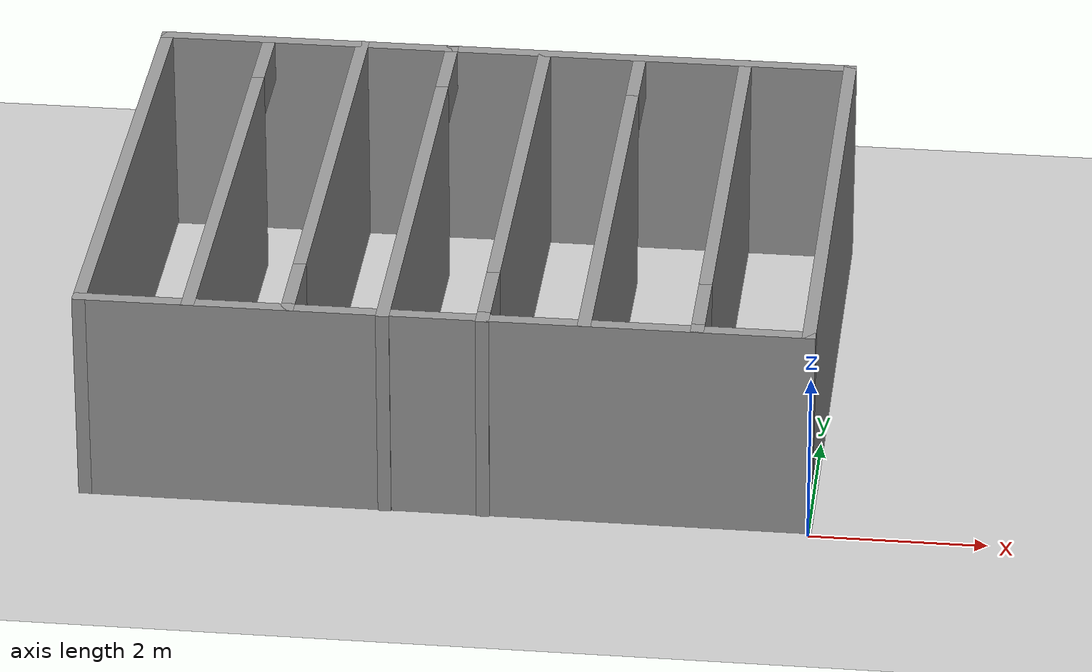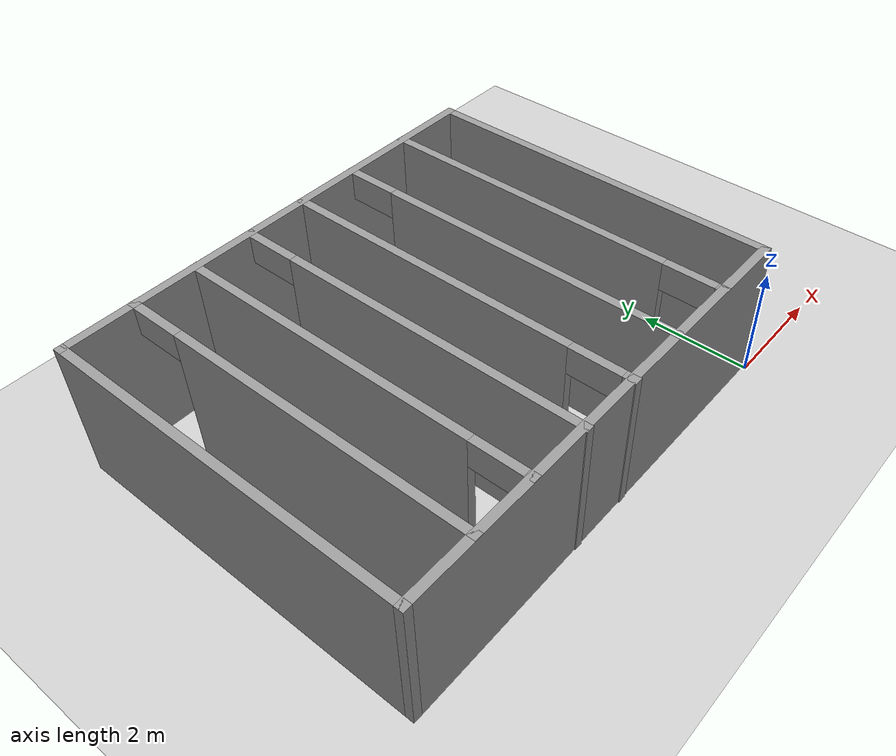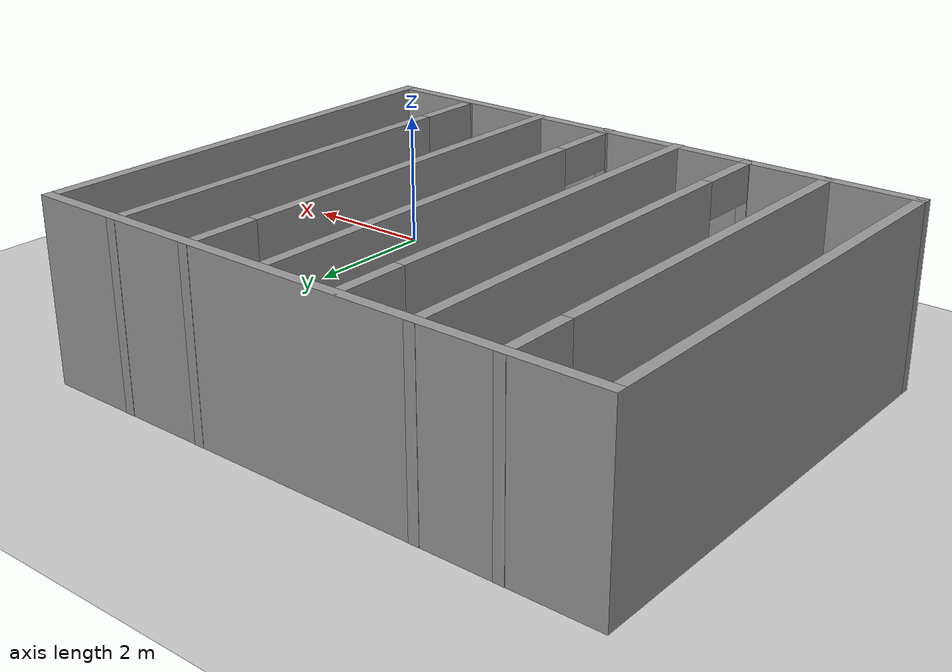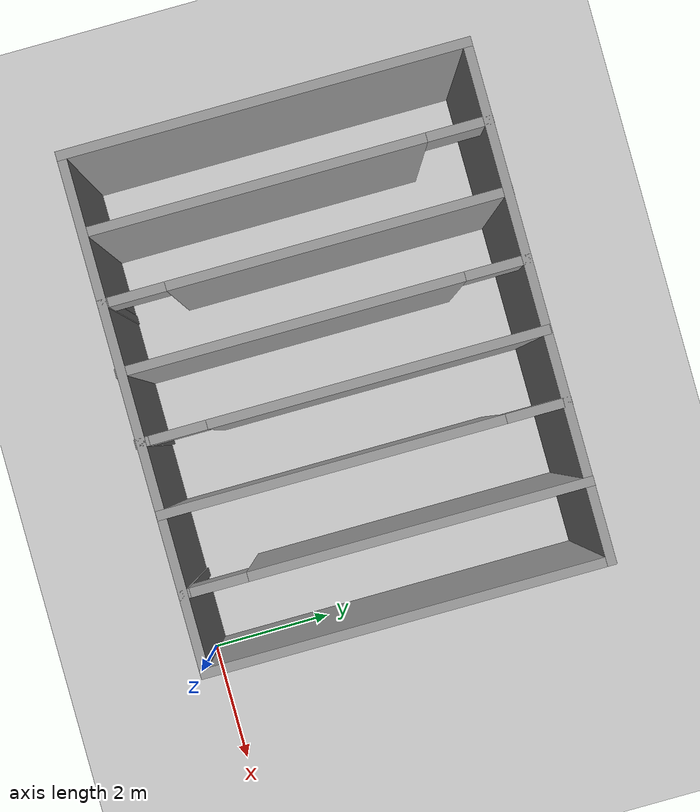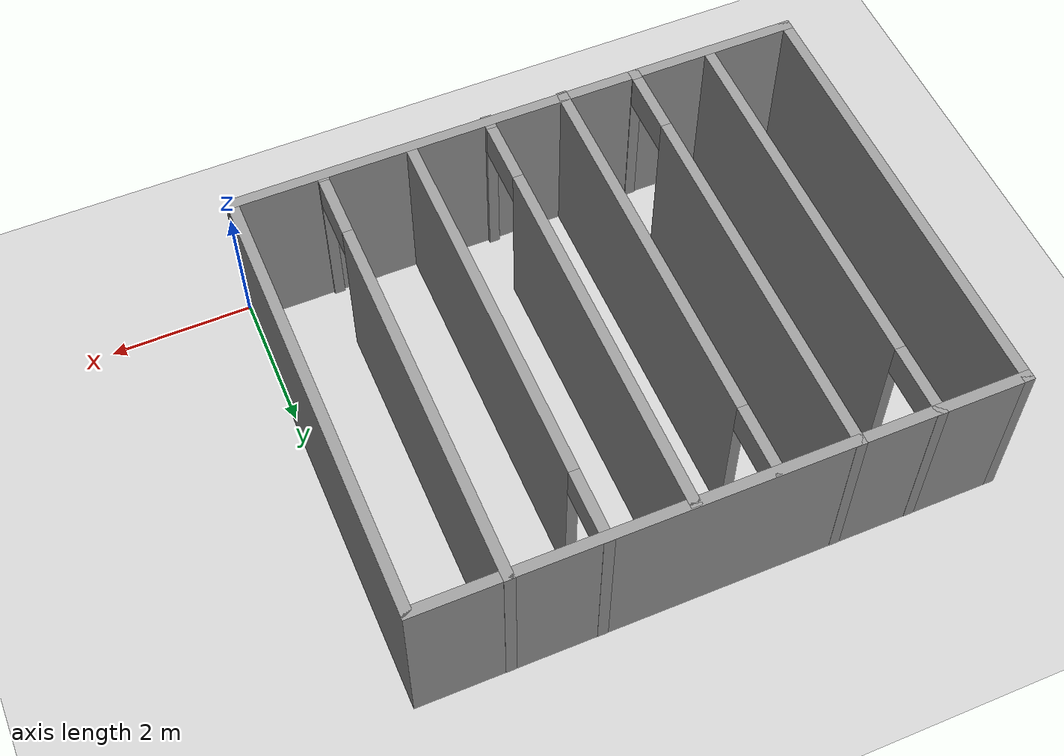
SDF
<sdf version="1.6">
 <world name="default">
  <light name="sun" type="directional">
   <pose>0 0 10 0 -0 0</pose>
   <diffuse>0.8 0.8 0.8 1</diffuse>
   <specular>0.1 0.1 0.1 1</specular>
   <attenuation>
    <range>1000</range>
    <constant>0.9</constant>
    <linear>0.01</linear>
    <quadratic>0.001</quadratic>
   </attenuation>
   <direction>-0.5 0.5 -1</direction>
  </light>
  <model name="ground_plane">
   <static>1</static>
   <link name="link">
    <collision name="collision">
     <geometry><plane><normal>0 0 1</normal><size>100 100</size></plane></geometry>
     <surface><friction><ode><mu>100</mu><mu2>50</mu2></ode></friction></surface>
    </collision>
    <visual name="visual">
     <cast_shadows>0</cast_shadows>
     <geometry><plane><normal>0 0 1</normal><size>100 100</size></plane></geometry>
     <material>
      <script><uri>file://media/materials/scripts/gazebo.material</uri><name>Gazebo/Grey</name></script>
     </material>
    </visual>
   </link>
  </model>
  <gravity>0 0 -9.8</gravity>
  <magnetic_field>6e-06 2.3e-05 -4.2e-05</magnetic_field>
  <atmosphere type="adiabatic"/>
  <physics name="default_physics" default="0" type="ode">
   <max_step_size>0.001</max_step_size>
   <real_time_factor>1</real_time_factor>
   <real_time_update_rate>1000</real_time_update_rate>
  </physics>
  <scene><ambient>0.4 0.4 0.4 1</ambient><background>0.7 0.7 0.7 1</background><shadows>1</shadows></scene>
  <spherical_coordinates>
   <surface_model>EARTH_WGS84</surface_model>
   <latitude_deg>0</latitude_deg>
   <longitude_deg>0</longitude_deg>
   <elevation>0</elevation>
   <heading_deg>0</heading_deg>
  </spherical_coordinates>
  <model name="house2">
   <pose>-4.09274 3.29085 0 0 -0 0</pose>
   <link name="Wall_1">
    <collision name="Wall_1_Collision">
     <geometry><box><size>6.5 0.15 2.5</size></box></geometry>
     <pose>0 0 1.25 0 -0 0</pose>
    </collision>
    <visual name="Wall_1_Visual">
     <pose>0 0 1.25 0 -0 0</pose>
     <geometry><box><size>6.5 0.15 2.5</size></box></geometry>
     <material>
      <script><uri>file://media/materials/scripts/gazebo.material</uri><name>Gazebo/Grey</name></script>
      <ambient>1 1 1 1</ambient>
     </material>
    </visual>
    <pose>-4.05 0.007 0 0 -0 1.5708</pose>
   </link>
   <link name="Wall_11">
    <pose>0.446603 -0.010246 0 0 0 -1.5708</pose>
    <visual name="Wall_11_Visual_0">
     <pose>-0.561448 0 1.25 0 -0 0</pose>
     <geometry><box><size>5.3771 0.15 2.5</size></box></geometry>
     <material>
      <script><uri>file://media/materials/scripts/gazebo.material</uri><name>Gazebo/Grey</name></script>
      <ambient>1 1 1 1</ambient>
     </material>
    </visual>
    <collision name="Wall_11_Collision_0">
     <geometry><box><size>5.3771 0.15 2.5</size></box></geometry>
     <pose>-0.561448 0 1.25 0 -0 0</pose>
    </collision>
    <visual name="Wall_11_Visual_1">
     <pose>3.13855 0 1.25 0 -0 0</pose>
     <geometry><box><size>0.222896 0.15 2.5</size></box></geometry>
     <material>
      <script><uri>file://media/materials/scripts/gazebo.material</uri><name>Gazebo/Grey</name></script>
      <ambient>1 1 1 1</ambient>
     </material>
    </visual>
    <collision name="Wall_11_Collision_1">
     <geometry><box><size>0.222896 0.15 2.5</size></box></geometry>
     <pose>3.13855 0 1.25 0 -0 0</pose>
    </collision>
    <visual name="Wall_11_Visual_2">
     <pose>2.5771 0 2.25 0 -0 0</pose>
     <geometry><box><size>0.9 0.15 0.5</size></box></geometry>
     <material>
      <script><uri>file://media/materials/scripts/gazebo.material</uri><name>Gazebo/Grey</name></script>
      <ambient>1 1 1 1</ambient>
     </material>
    </visual>
    <collision name="Wall_11_Collision_2">
     <geometry><box><size>0.9 0.15 0.5</size></box></geometry>
     <pose>2.5771 0 2.25 0 -0 0</pose>
    </collision>
   </link>
   <link name="Wall_16">
    <pose>1.5729 0.010246 0 0 0 -1.5708</pose>
    <visual name="Wall_16_Visual_0">
     <pose>-3.18608 0 1.25 0 -0 0</pose>
     <geometry><box><size>0.12784 0.15 2.5</size></box></geometry>
     <material>
      <script><uri>file://media/materials/scripts/gazebo.material</uri><name>Gazebo/Grey</name></script>
      <ambient>1 1 1 1</ambient>
     </material>
    </visual>
    <collision name="Wall_16_Collision_0">
     <geometry><box><size>0.12784 0.15 2.5</size></box></geometry>
     <pose>-3.18608 0 1.25 0 -0 0</pose>
    </collision>
    <visual name="Wall_16_Visual_1">
     <pose>0.51392 0 1.25 0 -0 0</pose>
     <geometry><box><size>5.47216 0.15 2.5</size></box></geometry>
     <material>
      <script><uri>file://media/materials/scripts/gazebo.material</uri><name>Gazebo/Grey</name></script>
      <ambient>1 1 1 1</ambient>
     </material>
    </visual>
    <collision name="Wall_16_Collision_1">
     <geometry><box><size>5.47216 0.15 2.5</size></box></geometry>
     <pose>0.51392 0 1.25 0 -0 0</pose>
    </collision>
    <visual name="Wall_16_Visual_2">
     <pose>-2.67216 0 2.25 0 -0 0</pose>
     <geometry><box><size>0.9 0.15 0.5</size></box></geometry>
     <material>
      <script><uri>file://media/materials/scripts/gazebo.material</uri><name>Gazebo/Grey</name></script>
      <ambient>1 1 1 1</ambient>
     </material>
    </visual>
    <collision name="Wall_16_Collision_2">
     <geometry><box><size>0.9 0.15 0.5</size></box></geometry>
     <pose>-2.67216 0 2.25 0 -0 0</pose>
    </collision>
   </link>
   <link name="Wall_18">
    <pose>2.81994 0.010246 0 0 0 -1.5708</pose>
    <visual name="Wall_18_Visual_0">
     <pose>-0.541146 0 1.25 0 -0 0</pose>
     <geometry><box><size>5.41771 0.15 2.5</size></box></geometry>
     <material>
      <script><uri>file://media/materials/scripts/gazebo.material</uri><name>Gazebo/Grey</name></script>
      <ambient>1 1 1 1</ambient>
     </material>
    </visual>
    <collision name="Wall_18_Collision_0">
     <geometry><box><size>5.41771 0.15 2.5</size></box></geometry>
     <pose>-0.541146 0 1.25 0 -0 0</pose>
    </collision>
    <visual name="Wall_18_Visual_1">
     <pose>3.15885 0 1.25 0 -0 0</pose>
     <geometry><box><size>0.182291 0.15 2.5</size></box></geometry>
     <material>
      <script><uri>file://media/materials/scripts/gazebo.material</uri><name>Gazebo/Grey</name></script>
      <ambient>1 1 1 1</ambient>
     </material>
    </visual>
    <collision name="Wall_18_Collision_1">
     <geometry><box><size>0.182291 0.15 2.5</size></box></geometry>
     <pose>3.15885 0 1.25 0 -0 0</pose>
    </collision>
    <visual name="Wall_18_Visual_2">
     <pose>2.61771 0 2.25 0 -0 0</pose>
     <geometry><box><size>0.9 0.15 0.5</size></box></geometry>
     <material>
      <script><uri>file://media/materials/scripts/gazebo.material</uri><name>Gazebo/Grey</name></script>
      <ambient>1 1 1 1</ambient>
     </material>
    </visual>
    <collision name="Wall_18_Collision_2">
     <geometry><box><size>0.9 0.15 0.5</size></box></geometry>
     <pose>2.61771 0 2.25 0 -0 0</pose>
    </collision>
   </link>
   <link name="Wall_2">
    <collision name="Wall_2_Collision">
     <geometry><box><size>8.25 0.15 2.5</size></box></geometry>
     <pose>0 0 1.25 0 -0 0</pose>
    </collision>
    <visual name="Wall_2_Visual">
     <pose>0 0 1.25 0 -0 0</pose>
     <geometry><box><size>8.25 0.15 2.5</size></box></geometry>
     <material>
      <script><uri>file://media/materials/scripts/gazebo.material</uri><name>Gazebo/Grey</name></script>
      <ambient>1 1 1 1</ambient>
     </material>
    </visual>
    <pose>0 3.182 0 0 -0 0</pose>
   </link>
   <link name="Wall_20">
    <collision name="Wall_20_Collision">
     <geometry><box><size>6.5 0.15 2.5</size></box></geometry>
     <pose>0 0 1.25 0 -0 0</pose>
    </collision>
    <visual name="Wall_20_Visual">
     <pose>0 0 1.25 0 -0 0</pose>
     <geometry><box><size>6.5 0.15 2.5</size></box></geometry>
     <material>
      <script><uri>file://media/materials/scripts/gazebo.material</uri><name>Gazebo/Grey</name></script>
      <ambient>1 1 1 1</ambient>
     </material>
    </visual>
    <pose>4.05 0.007 0 0 0 -1.5708</pose>
   </link>
   <link name="Wall_21">
    <collision name="Wall_21_Collision">
     <geometry><box><size>8.25 0.15 2.5</size></box></geometry>
     <pose>0 0 1.25 0 -0 0</pose>
    </collision>
    <visual name="Wall_21_Visual">
     <pose>0 0 1.25 0 -0 0</pose>
     <geometry><box><size>8.25 0.15 2.5</size></box></geometry>
     <material>
      <script><uri>file://media/materials/scripts/gazebo.material</uri><name>Gazebo/Grey</name></script>
      <ambient>1 1 1 1</ambient>
     </material>
    </visual>
    <pose>0 -3.168 0 0 -0 3.14159</pose>
   </link>
   <link name="Wall_5">
    <pose>-2.83197 0.010246 0 0 0 -1.5708</pose>
    <visual name="Wall_5_Visual_0">
     <pose>-3.17602 0 1.25 0 -0 0</pose>
     <geometry><box><size>0.147953 0.15 2.5</size></box></geometry>
     <material>
      <script><uri>file://media/materials/scripts/gazebo.material</uri><name>Gazebo/Grey</name></script>
      <ambient>1 1 1 1</ambient>
     </material>
    </visual>
    <collision name="Wall_5_Collision_0">
     <geometry><box><size>0.147953 0.15 2.5</size></box></geometry>
     <pose>-3.17602 0 1.25 0 -0 0</pose>
    </collision>
    <visual name="Wall_5_Visual_1">
     <pose>0.523977 0 1.25 0 -0 0</pose>
     <geometry><box><size>5.45205 0.15 2.5</size></box></geometry>
     <material>
      <script><uri>file://media/materials/scripts/gazebo.material</uri><name>Gazebo/Grey</name></script>
      <ambient>1 1 1 1</ambient>
     </material>
    </visual>
    <collision name="Wall_5_Collision_1">
     <geometry><box><size>5.45205 0.15 2.5</size></box></geometry>
     <pose>0.523977 0 1.25 0 -0 0</pose>
    </collision>
    <visual name="Wall_5_Visual_2">
     <pose>-2.65205 0 2.25 0 -0 0</pose>
     <geometry><box><size>0.9 0.15 0.5</size></box></geometry>
     <material>
      <script><uri>file://media/materials/scripts/gazebo.material</uri><name>Gazebo/Grey</name></script>
      <ambient>1 1 1 1</ambient>
     </material>
    </visual>
    <collision name="Wall_5_Collision_2">
     <geometry><box><size>0.9 0.15 0.5</size></box></geometry>
     <pose>-2.65205 0 2.25 0 -0 0</pose>
    </collision>
   </link>
   <link name="Wall_7">
    <pose>-1.72572 0.010246 0 0 0 -1.5708</pose>
    <visual name="Wall_7_Visual_0">
     <pose>-0.531089 0 1.25 0 -0 0</pose>
     <geometry><box><size>5.43782 0.15 2.5</size></box></geometry>
     <material>
      <script><uri>file://media/materials/scripts/gazebo.material</uri><name>Gazebo/Grey</name></script>
      <ambient>1 1 1 1</ambient>
     </material>
    </visual>
    <collision name="Wall_7_Collision_0">
     <geometry><box><size>5.43782 0.15 2.5</size></box></geometry>
     <pose>-0.531089 0 1.25 0 -0 0</pose>
    </collision>
    <visual name="Wall_7_Visual_1">
     <pose>3.16891 0 1.25 0 -0 0</pose>
     <geometry><box><size>0.162177 0.15 2.5</size></box></geometry>
     <material>
      <script><uri>file://media/materials/scripts/gazebo.material</uri><name>Gazebo/Grey</name></script>
      <ambient>1 1 1 1</ambient>
     </material>
    </visual>
    <collision name="Wall_7_Collision_1">
     <geometry><box><size>0.162177 0.15 2.5</size></box></geometry>
     <pose>3.16891 0 1.25 0 -0 0</pose>
    </collision>
    <visual name="Wall_7_Visual_2">
     <pose>2.63782 0 2.25 0 -0 0</pose>
     <geometry><box><size>0.9 0.15 0.5</size></box></geometry>
     <material>
      <script><uri>file://media/materials/scripts/gazebo.material</uri><name>Gazebo/Grey</name></script>
      <ambient>1 1 1 1</ambient>
     </material>
    </visual>
    <collision name="Wall_7_Collision_2">
     <geometry><box><size>0.9 0.15 0.5</size></box></geometry>
     <pose>2.63782 0 2.25 0 -0 0</pose>
    </collision>
   </link>
   <link name="Wall_9">
    <pose>-0.659706 -0.009868 0 0 0 -1.5708</pose>
    <visual name="Wall_9_Visual_0">
     <pose>-3.18608 0 1.25 0 -0 0</pose>
     <geometry><box><size>0.127839 0.15 2.5</size></box></geometry>
     <material>
      <script><uri>file://media/materials/scripts/gazebo.material</uri><name>Gazebo/Grey</name></script>
      <ambient>1 1 1 1</ambient>
     </material>
    </visual>
    <collision name="Wall_9_Collision_0">
     <geometry><box><size>0.127839 0.15 2.5</size></box></geometry>
     <pose>-3.18608 0 1.25 0 -0 0</pose>
    </collision>
    <visual name="Wall_9_Visual_1">
     <pose>0.51392 0 1.25 0 -0 0</pose>
     <geometry><box><size>5.47216 0.15 2.5</size></box></geometry>
     <material>
      <script><uri>file://media/materials/scripts/gazebo.material</uri><name>Gazebo/Grey</name></script>
      <ambient>1 1 1 1</ambient>
     </material>
    </visual>
    <collision name="Wall_9_Collision_1">
     <geometry><box><size>5.47216 0.15 2.5</size></box></geometry>
     <pose>0.51392 0 1.25 0 -0 0</pose>
    </collision>
    <visual name="Wall_9_Visual_2">
     <pose>-2.67216 0 2.25 0 -0 0</pose>
     <geometry><box><size>0.9 0.15 0.5</size></box></geometry>
     <material>
      <script><uri>file://media/materials/scripts/gazebo.material</uri><name>Gazebo/Grey</name></script>
      <ambient>1 1 1 1</ambient>
     </material>
    </visual>
    <collision name="Wall_9_Collision_2">
     <geometry><box><size>0.9 0.15 0.5</size></box></geometry>
     <pose>-2.67216 0 2.25 0 -0 0</pose>
    </collision>
   </link>
   <static>1</static>
  </model>
 </world>
</sdf>
